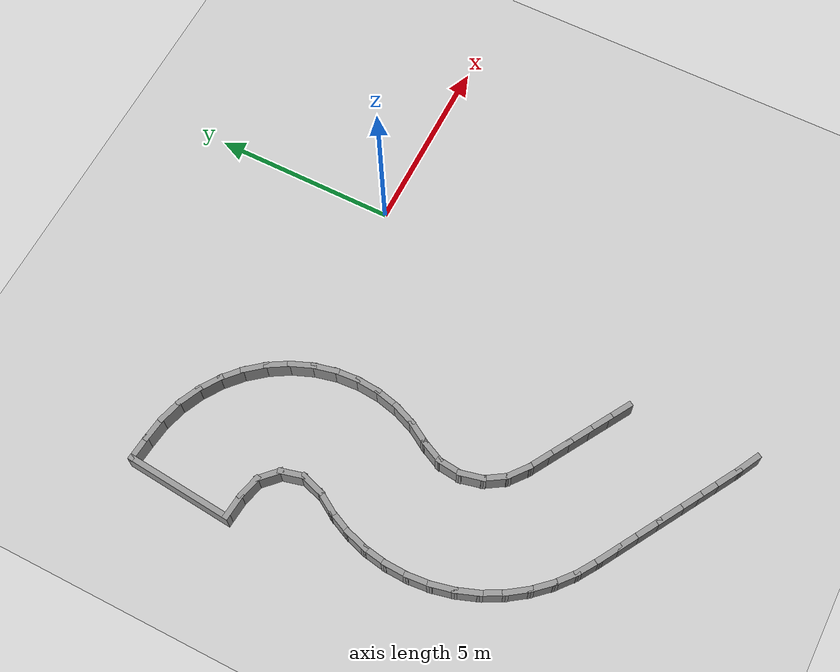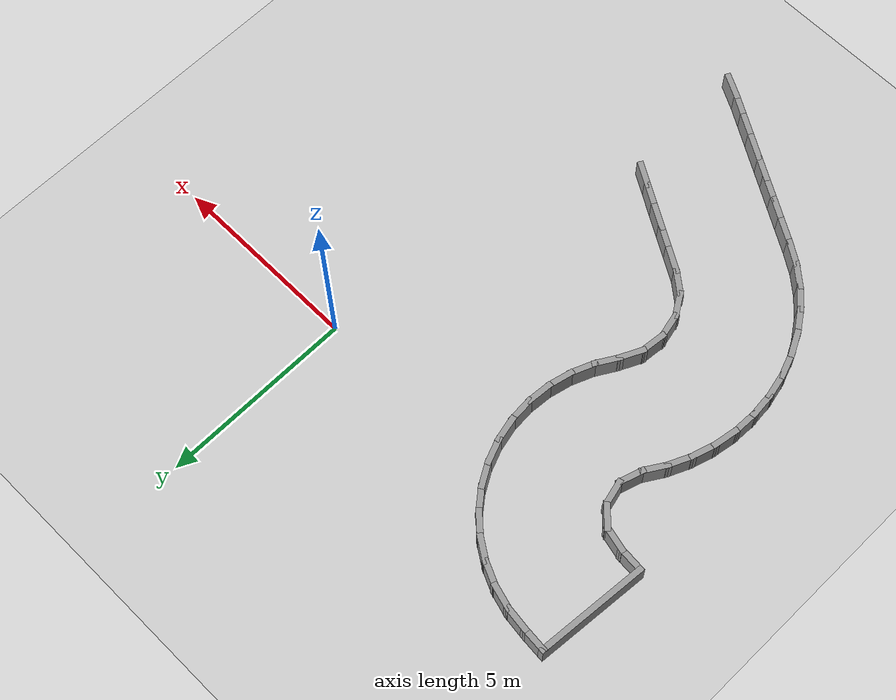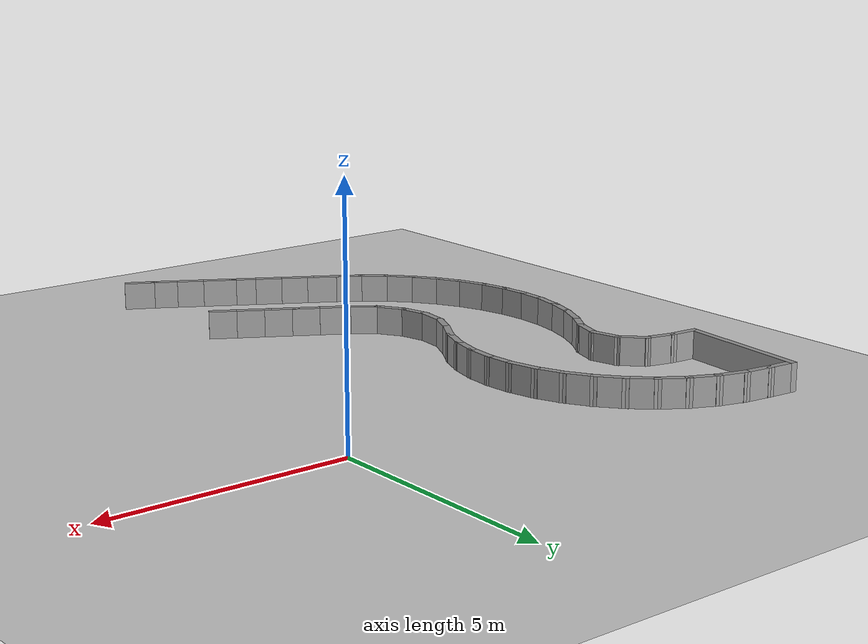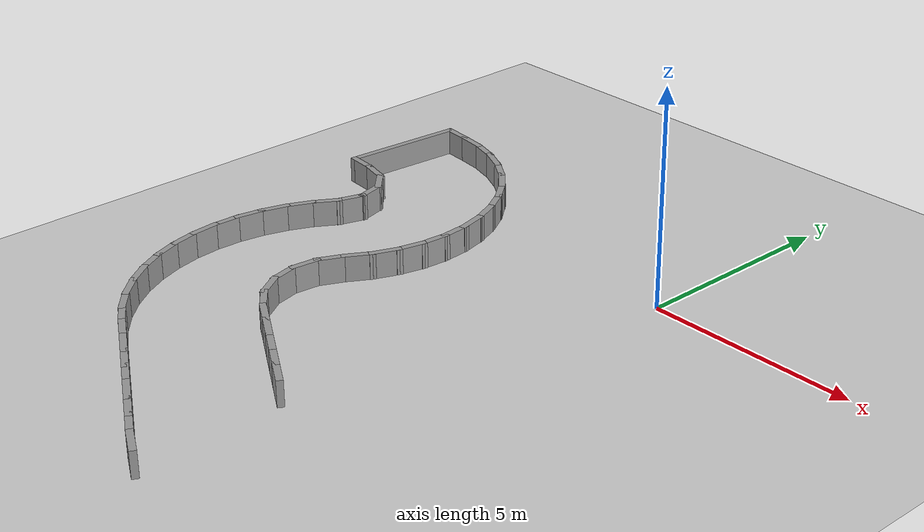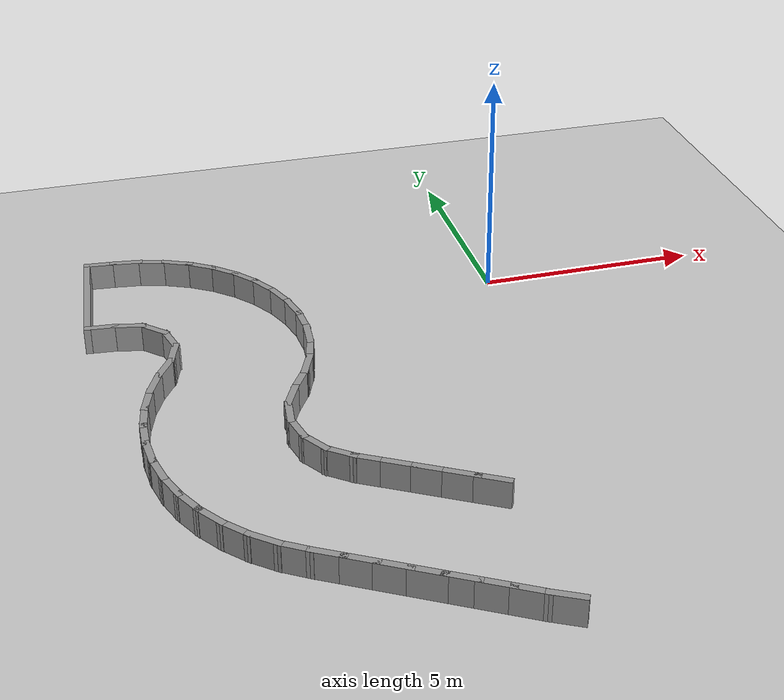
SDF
<sdf version="1.7">
 <world name="default">
  <model name="ground_plane">
   <static>1</static>
   <link name="link">
    <collision name="collision">
     <geometry><plane><normal>0 0 1</normal><size>100 100</size></plane></geometry>
     <surface><friction><ode><mu>100</mu><mu2>50</mu2></ode></friction></surface>
    </collision>
    <visual name="visual">
     <cast_shadows>0</cast_shadows>
     <geometry><plane><normal>0 0 1</normal><size>100 100</size></plane></geometry>
     <material>
      <script><uri>file://media/materials/scripts/gazebo.material</uri><name>Gazebo/Grey</name></script>
     </material>
    </visual>
   </link>
  </model>
  <model name="rand_turn_05">
   <link name="Wall_0">
    <collision name="Wall_0_Collision">
     <geometry><box><size>0.7500 0.1500 0.6000</size></box></geometry>
     <pose>0 0 0.3000 0 -0 0</pose>
    </collision>
    <visual name="Wall_0_Visual">
     <pose>0 0 0.3000 0 -0 0</pose>
     <geometry><box><size>0.7500 0.1500 0.6000</size></box></geometry>
     <material>
      <script><uri>file://media/materials/scripts/gazebo.material</uri><name>Gazebo/Grey</name></script>
      <ambient>1 1 1 1</ambient>
     </material>
    </visual>
    <pose>-8.7626 2.2049 0 0 -0 -0.08479</pose>
   </link>
   <link name="Wall_1">
    <collision name="Wall_1_Collision">
     <geometry><box><size>0.7495 0.1500 0.6000</size></box></geometry>
     <pose>0 0 0.3000 0 -0 0</pose>
    </collision>
    <visual name="Wall_1_Visual">
     <pose>0 0 0.3000 0 -0 0</pose>
     <geometry><box><size>0.7495 0.1500 0.6000</size></box></geometry>
     <material>
      <script><uri>file://media/materials/scripts/gazebo.material</uri><name>Gazebo/Grey</name></script>
      <ambient>1 1 1 1</ambient>
     </material>
    </visual>
    <pose>-8.1663 2.1412 0 0 -0 -0.12813</pose>
   </link>
   <link name="Wall_2">
    <collision name="Wall_2_Collision">
     <geometry><box><size>0.7494 0.1500 0.6000</size></box></geometry>
     <pose>0 0 0.3000 0 -0 0</pose>
    </collision>
    <visual name="Wall_2_Visual">
     <pose>0 0 0.3000 0 -0 0</pose>
     <geometry><box><size>0.7494 0.1500 0.6000</size></box></geometry>
     <material>
      <script><uri>file://media/materials/scripts/gazebo.material</uri><name>Gazebo/Grey</name></script>
      <ambient>1 1 1 1</ambient>
     </material>
    </visual>
    <pose>-7.5807 2.0215 0 0 -0 -0.27534</pose>
   </link>
   <link name="Wall_3">
    <collision name="Wall_3_Collision">
     <geometry><box><size>0.7494 0.1500 0.6000</size></box></geometry>
     <pose>0 0 0.3000 0 -0 0</pose>
    </collision>
    <visual name="Wall_3_Visual">
     <pose>0 0 0.3000 0 -0 0</pose>
     <geometry><box><size>0.7494 0.1500 0.6000</size></box></geometry>
     <material>
      <script><uri>file://media/materials/scripts/gazebo.material</uri><name>Gazebo/Grey</name></script>
      <ambient>1 1 1 1</ambient>
     </material>
    </visual>
    <pose>-7.0196 1.8156 0 0 -0 -0.42779</pose>
   </link>
   <link name="Wall_4">
    <collision name="Wall_4_Collision">
     <geometry><box><size>0.7494 0.1500 0.6000</size></box></geometry>
     <pose>0 0 0.3000 0 -0 0</pose>
    </collision>
    <visual name="Wall_4_Visual">
     <pose>0 0 0.3000 0 -0 0</pose>
     <geometry><box><size>0.7494 0.1500 0.6000</size></box></geometry>
     <material>
      <script><uri>file://media/materials/scripts/gazebo.material</uri><name>Gazebo/Grey</name></script>
      <ambient>1 1 1 1</ambient>
     </material>
    </visual>
    <pose>-6.4964 1.5267 0 0 -0 -0.58156</pose>
   </link>
   <link name="Wall_5">
    <collision name="Wall_5_Collision">
     <geometry><box><size>0.7494 0.1500 0.6000</size></box></geometry>
     <pose>0 0 0.3000 0 -0 0</pose>
    </collision>
    <visual name="Wall_5_Visual">
     <pose>0 0 0.3000 0 -0 0</pose>
     <geometry><box><size>0.7494 0.1500 0.6000</size></box></geometry>
     <material>
      <script><uri>file://media/materials/scripts/gazebo.material</uri><name>Gazebo/Grey</name></script>
      <ambient>1 1 1 1</ambient>
     </material>
    </visual>
    <pose>-6.0235 1.1612 0 0 -0 -0.73442</pose>
   </link>
   <link name="Wall_6">
    <collision name="Wall_6_Collision">
     <geometry><box><size>0.7493 0.1500 0.6000</size></box></geometry>
     <pose>0 0 0.3000 0 -0 0</pose>
    </collision>
    <visual name="Wall_6_Visual">
     <pose>0 0 0.3000 0 -0 0</pose>
     <geometry><box><size>0.7493 0.1500 0.6000</size></box></geometry>
     <material>
      <script><uri>file://media/materials/scripts/gazebo.material</uri><name>Gazebo/Grey</name></script>
      <ambient>1 1 1 1</ambient>
     </material>
    </visual>
    <pose>-5.6118 0.7281 0 0 -0 -0.88686</pose>
   </link>
   <link name="Wall_7">
    <collision name="Wall_7_Collision">
     <geometry><box><size>0.7493 0.1500 0.6000</size></box></geometry>
     <pose>0 0 0.3000 0 -0 0</pose>
    </collision>
    <visual name="Wall_7_Visual">
     <pose>0 0 0.3000 0 -0 0</pose>
     <geometry><box><size>0.7493 0.1500 0.6000</size></box></geometry>
     <material>
      <script><uri>file://media/materials/scripts/gazebo.material</uri><name>Gazebo/Grey</name></script>
      <ambient>1 1 1 1</ambient>
     </material>
    </visual>
    <pose>-5.2705 0.2375 0 0 -0 -1.03931</pose>
   </link>
   <link name="Wall_8">
    <collision name="Wall_8_Collision">
     <geometry><box><size>0.7494 0.1500 0.6000</size></box></geometry>
     <pose>0 0 0.3000 0 -0 0</pose>
    </collision>
    <visual name="Wall_8_Visual">
     <pose>0 0 0.3000 0 -0 0</pose>
     <geometry><box><size>0.7494 0.1500 0.6000</size></box></geometry>
     <material>
      <script><uri>file://media/materials/scripts/gazebo.material</uri><name>Gazebo/Grey</name></script>
      <ambient>1 1 1 1</ambient>
     </material>
    </visual>
    <pose>-5.0078 -0.2993 0 0 -0 -1.19175</pose>
   </link>
   <link name="Wall_9">
    <collision name="Wall_9_Collision">
     <geometry><box><size>0.7494 0.1500 0.6000</size></box></geometry>
     <pose>0 0 0.3000 0 -0 0</pose>
    </collision>
    <visual name="Wall_9_Visual">
     <pose>0 0 0.3000 0 -0 0</pose>
     <geometry><box><size>0.7494 0.1500 0.6000</size></box></geometry>
     <material>
      <script><uri>file://media/materials/scripts/gazebo.material</uri><name>Gazebo/Grey</name></script>
      <ambient>1 1 1 1</ambient>
     </material>
    </visual>
    <pose>-4.8295 -0.8697 0 0 -0 -1.34420</pose>
   </link>
   <link name="Wall_10">
    <collision name="Wall_10_Collision">
     <geometry><box><size>0.7494 0.1500 0.6000</size></box></geometry>
     <pose>0 0 0.3000 0 -0 0</pose>
    </collision>
    <visual name="Wall_10_Visual">
     <pose>0 0 0.3000 0 -0 0</pose>
     <geometry><box><size>0.7494 0.1500 0.6000</size></box></geometry>
     <material>
      <script><uri>file://media/materials/scripts/gazebo.material</uri><name>Gazebo/Grey</name></script>
      <ambient>1 1 1 1</ambient>
     </material>
    </visual>
    <pose>-4.7404 -1.4607 0 0 -0 -1.49800</pose>
   </link>
   <link name="Wall_11">
    <collision name="Wall_11_Collision">
     <geometry><box><size>0.7494 0.1500 0.6000</size></box></geometry>
     <pose>0 0 0.3000 0 -0 0</pose>
    </collision>
    <visual name="Wall_11_Visual">
     <pose>0 0 0.3000 0 -0 0</pose>
     <geometry><box><size>0.7494 0.1500 0.6000</size></box></geometry>
     <material>
      <script><uri>file://media/materials/scripts/gazebo.material</uri><name>Gazebo/Grey</name></script>
      <ambient>1 1 1 1</ambient>
     </material>
    </visual>
    <pose>-4.7426 -2.0583 0 0 -0 -1.65083</pose>
   </link>
   <link name="Wall_12">
    <collision name="Wall_12_Collision">
     <geometry><box><size>0.7493 0.1500 0.6000</size></box></geometry>
     <pose>0 0 0.3000 0 -0 0</pose>
    </collision>
    <visual name="Wall_12_Visual">
     <pose>0 0 0.3000 0 -0 0</pose>
     <geometry><box><size>0.7493 0.1500 0.6000</size></box></geometry>
     <material>
      <script><uri>file://media/materials/scripts/gazebo.material</uri><name>Gazebo/Grey</name></script>
      <ambient>1 1 1 1</ambient>
     </material>
    </visual>
    <pose>-4.8356 -2.6487 0 0 -0 -1.80327</pose>
   </link>
   <link name="Wall_13">
    <collision name="Wall_13_Collision">
     <geometry><box><size>0.7493 0.1500 0.6000</size></box></geometry>
     <pose>0 0 0.3000 0 -0 0</pose>
    </collision>
    <visual name="Wall_13_Visual">
     <pose>0 0 0.3000 0 -0 0</pose>
     <geometry><box><size>0.7493 0.1500 0.6000</size></box></geometry>
     <material>
      <script><uri>file://media/materials/scripts/gazebo.material</uri><name>Gazebo/Grey</name></script>
      <ambient>1 1 1 1</ambient>
     </material>
    </visual>
    <pose>-5.0171 -3.2180 0 0 -0 -1.95572</pose>
   </link>
   <link name="Wall_14">
    <collision name="Wall_14_Collision">
     <geometry><box><size>0.7494 0.1500 0.6000</size></box></geometry>
     <pose>0 0 0.3000 0 -0 0</pose>
    </collision>
    <visual name="Wall_14_Visual">
     <pose>0 0 0.3000 0 -0 0</pose>
     <geometry><box><size>0.7494 0.1500 0.6000</size></box></geometry>
     <material>
      <script><uri>file://media/materials/scripts/gazebo.material</uri><name>Gazebo/Grey</name></script>
      <ambient>1 1 1 1</ambient>
     </material>
    </visual>
    <pose>-5.2828 -3.7534 0 0 -0 -2.10714</pose>
   </link>
   <link name="Wall_15">
    <collision name="Wall_15_Collision">
     <geometry><box><size>0.7472 0.1500 0.6000</size></box></geometry>
     <pose>0 0 0.3000 0 -0 0</pose>
    </collision>
    <visual name="Wall_15_Visual">
     <pose>0 0 0.3000 0 -0 0</pose>
     <geometry><box><size>0.7472 0.1500 0.6000</size></box></geometry>
     <material>
      <script><uri>file://media/materials/scripts/gazebo.material</uri><name>Gazebo/Grey</name></script>
      <ambient>1 1 1 1</ambient>
     </material>
    </visual>
    <pose>-5.5640 -4.2807 0 0 -0 -2.01420</pose>
   </link>
   <link name="Wall_16">
    <collision name="Wall_16_Collision">
     <geometry><box><size>0.7472 0.1500 0.6000</size></box></geometry>
     <pose>0 0 0.3000 0 -0 0</pose>
    </collision>
    <visual name="Wall_16_Visual">
     <pose>0 0 0.3000 0 -0 0</pose>
     <geometry><box><size>0.7472 0.1500 0.6000</size></box></geometry>
     <material>
      <script><uri>file://media/materials/scripts/gazebo.material</uri><name>Gazebo/Grey</name></script>
      <ambient>1 1 1 1</ambient>
     </material>
    </visual>
    <pose>-5.7241 -4.8473 0 0 -0 -1.67809</pose>
   </link>
   <link name="Wall_17">
    <collision name="Wall_17_Collision">
     <geometry><box><size>0.7472 0.1500 0.6000</size></box></geometry>
     <pose>0 0 0.3000 0 -0 0</pose>
    </collision>
    <visual name="Wall_17_Visual">
     <pose>0 0 0.3000 0 -0 0</pose>
     <geometry><box><size>0.7472 0.1500 0.6000</size></box></geometry>
     <material>
      <script><uri>file://media/materials/scripts/gazebo.material</uri><name>Gazebo/Grey</name></script>
      <ambient>1 1 1 1</ambient>
     </material>
    </visual>
    <pose>-5.6886 -5.4350 0 0 -0 -1.34269</pose>
   </link>
   <link name="Wall_18">
    <collision name="Wall_18_Collision">
     <geometry><box><size>0.7471 0.1500 0.6000</size></box></geometry>
     <pose>0 0 0.3000 0 -0 0</pose>
    </collision>
    <visual name="Wall_18_Visual">
     <pose>0 0 0.3000 0 -0 0</pose>
     <geometry><box><size>0.7471 0.1500 0.6000</size></box></geometry>
     <material>
      <script><uri>file://media/materials/scripts/gazebo.material</uri><name>Gazebo/Grey</name></script>
      <ambient>1 1 1 1</ambient>
     </material>
    </visual>
    <pose>-5.4616 -5.9783 0 0 -0 -1.00732</pose>
   </link>
   <link name="Wall_19">
    <collision name="Wall_19_Collision">
     <geometry><box><size>0.7473 0.1500 0.6000</size></box></geometry>
     <pose>0 0 0.3000 0 -0 0</pose>
    </collision>
    <visual name="Wall_19_Visual">
     <pose>0 0 0.3000 0 -0 0</pose>
     <geometry><box><size>0.7473 0.1500 0.6000</size></box></geometry>
     <material>
      <script><uri>file://media/materials/scripts/gazebo.material</uri><name>Gazebo/Grey</name></script>
      <ambient>1 1 1 1</ambient>
     </material>
    </visual>
    <pose>-5.0686 -6.4169 0 0 -0 -0.67321</pose>
   </link>
   <link name="Wall_20">
    <collision name="Wall_20_Collision">
     <geometry><box><size>0.7500 0.1500 0.6000</size></box></geometry>
     <pose>0 0 0.3000 0 -0 0</pose>
    </collision>
    <visual name="Wall_20_Visual">
     <pose>0 0 0.3000 0 -0 0</pose>
     <geometry><box><size>0.7500 0.1500 0.6000</size></box></geometry>
     <material>
      <script><uri>file://media/materials/scripts/gazebo.material</uri><name>Gazebo/Grey</name></script>
      <ambient>1 1 1 1</ambient>
     </material>
    </visual>
    <pose>-4.5766 -6.7553 0 0 -0 -0.53219</pose>
   </link>
   <link name="Wall_21">
    <collision name="Wall_21_Collision">
     <geometry><box><size>0.7500 0.1500 0.6000</size></box></geometry>
     <pose>0 0 0.3000 0 -0 0</pose>
    </collision>
    <visual name="Wall_21_Visual">
     <pose>0 0 0.3000 0 -0 0</pose>
     <geometry><box><size>0.7500 0.1500 0.6000</size></box></geometry>
     <material>
      <script><uri>file://media/materials/scripts/gazebo.material</uri><name>Gazebo/Grey</name></script>
      <ambient>1 1 1 1</ambient>
     </material>
    </visual>
    <pose>-4.0596 -7.0598 0 0 -0 -0.53224</pose>
   </link>
   <link name="Wall_22">
    <collision name="Wall_22_Collision">
     <geometry><box><size>0.7500 0.1500 0.6000</size></box></geometry>
     <pose>0 0 0.3000 0 -0 0</pose>
    </collision>
    <visual name="Wall_22_Visual">
     <pose>0 0 0.3000 0 -0 0</pose>
     <geometry><box><size>0.7500 0.1500 0.6000</size></box></geometry>
     <material>
      <script><uri>file://media/materials/scripts/gazebo.material</uri><name>Gazebo/Grey</name></script>
      <ambient>1 1 1 1</ambient>
     </material>
    </visual>
    <pose>-3.5426 -7.3643 0 0 -0 -0.53224</pose>
   </link>
   <link name="Wall_23">
    <collision name="Wall_23_Collision">
     <geometry><box><size>0.7500 0.1500 0.6000</size></box></geometry>
     <pose>0 0 0.3000 0 -0 0</pose>
    </collision>
    <visual name="Wall_23_Visual">
     <pose>0 0 0.3000 0 -0 0</pose>
     <geometry><box><size>0.7500 0.1500 0.6000</size></box></geometry>
     <material>
      <script><uri>file://media/materials/scripts/gazebo.material</uri><name>Gazebo/Grey</name></script>
      <ambient>1 1 1 1</ambient>
     </material>
    </visual>
    <pose>-3.0256 -7.6688 0 0 -0 -0.53224</pose>
   </link>
   <link name="Wall_24">
    <collision name="Wall_24_Collision">
     <geometry><box><size>0.7500 0.1500 0.6000</size></box></geometry>
     <pose>0 0 0.3000 0 -0 0</pose>
    </collision>
    <visual name="Wall_24_Visual">
     <pose>0 0 0.3000 0 -0 0</pose>
     <geometry><box><size>0.7500 0.1500 0.6000</size></box></geometry>
     <material>
      <script><uri>file://media/materials/scripts/gazebo.material</uri><name>Gazebo/Grey</name></script>
      <ambient>1 1 1 1</ambient>
     </material>
    </visual>
    <pose>-2.5086 -7.9733 0 0 -0 -0.53224</pose>
   </link>
   <link name="Wall_49">
    <collision name="Wall_49_Collision">
     <geometry><box><size>0.7500 0.1500 0.6000</size></box></geometry>
     <pose>0 0 0.3000 0 -0 0</pose>
    </collision>
    <visual name="Wall_49_Visual">
     <pose>0 0 0.3000 0 -0 0</pose>
     <geometry><box><size>0.7500 0.1500 0.6000</size></box></geometry>
     <material>
      <script><uri>file://media/materials/scripts/gazebo.material</uri><name>Gazebo/Grey</name></script>
      <ambient>1 1 1 1</ambient>
     </material>
    </visual>
    <pose>-9.0029 -0.6232 0 0 -0 -0.08479</pose>
   </link>
   <link name="Wall_50">
    <collision name="Wall_50_Collision">
     <geometry><box><size>0.7444 0.1500 0.6000</size></box></geometry>
     <pose>0 0 0.3000 0 -0 0</pose>
    </collision>
    <visual name="Wall_50_Visual">
     <pose>0 0 0.3000 0 -0 0</pose>
     <geometry><box><size>0.7444 0.1500 0.6000</size></box></geometry>
     <material>
      <script><uri>file://media/materials/scripts/gazebo.material</uri><name>Gazebo/Grey</name></script>
      <ambient>1 1 1 1</ambient>
     </material>
    </visual>
    <pose>-8.4153 -0.7189 0 0 -0 -0.23879</pose>
   </link>
   <link name="Wall_51">
    <collision name="Wall_51_Collision">
     <geometry><box><size>0.7424 0.1500 0.6000</size></box></geometry>
     <pose>0 0 0.3000 0 -0 0</pose>
    </collision>
    <visual name="Wall_51_Visual">
     <pose>0 0 0.3000 0 -0 0</pose>
     <geometry><box><size>0.7424 0.1500 0.6000</size></box></geometry>
     <material>
      <script><uri>file://media/materials/scripts/gazebo.material</uri><name>Gazebo/Grey</name></script>
      <ambient>1 1 1 1</ambient>
     </material>
    </visual>
    <pose>-7.9145 -0.9960 0 0 -0 -0.77289</pose>
   </link>
   <link name="Wall_52">
    <collision name="Wall_52_Collision">
     <geometry><box><size>0.7424 0.1500 0.6000</size></box></geometry>
     <pose>0 0 0.3000 0 -0 0</pose>
    </collision>
    <visual name="Wall_52_Visual">
     <pose>0 0 0.3000 0 -0 0</pose>
     <geometry><box><size>0.7424 0.1500 0.6000</size></box></geometry>
     <material>
      <script><uri>file://media/materials/scripts/gazebo.material</uri><name>Gazebo/Grey</name></script>
      <ambient>1 1 1 1</ambient>
     </material>
    </visual>
    <pose>-7.6298 -1.4900 0 0 -0 -1.32316</pose>
   </link>
   <link name="Wall_53">
    <collision name="Wall_53_Collision">
     <geometry><box><size>0.7424 0.1500 0.6000</size></box></geometry>
     <pose>0 0 0.3000 0 -0 0</pose>
    </collision>
    <visual name="Wall_53_Visual">
     <pose>0 0 0.3000 0 -0 0</pose>
     <geometry><box><size>0.7424 0.1500 0.6000</size></box></geometry>
     <material>
      <script><uri>file://media/materials/scripts/gazebo.material</uri><name>Gazebo/Grey</name></script>
      <ambient>1 1 1 1</ambient>
     </material>
    </visual>
    <pose>-7.6455 -2.0599 0 0 -0 -1.87351</pose>
   </link>
   <link name="Wall_54">
    <collision name="Wall_54_Collision">
     <geometry><box><size>0.7496 0.1500 0.6000</size></box></geometry>
     <pose>0 0 0.3000 0 -0 0</pose>
    </collision>
    <visual name="Wall_54_Visual">
     <pose>0 0 0.3000 0 -0 0</pose>
     <geometry><box><size>0.7496 0.1500 0.6000</size></box></geometry>
     <material>
      <script><uri>file://media/materials/scripts/gazebo.material</uri><name>Gazebo/Grey</name></script>
      <ambient>1 1 1 1</ambient>
     </material>
    </visual>
    <pose>-7.8917 -2.5975 0 0 -0 -2.12550</pose>
   </link>
   <link name="Wall_55">
    <collision name="Wall_55_Collision">
     <geometry><box><size>0.7496 0.1500 0.6000</size></box></geometry>
     <pose>0 0 0.3000 0 -0 0</pose>
    </collision>
    <visual name="Wall_55_Visual">
     <pose>0 0 0.3000 0 -0 0</pose>
     <geometry><box><size>0.7496 0.1500 0.6000</size></box></geometry>
     <material>
      <script><uri>file://media/materials/scripts/gazebo.material</uri><name>Gazebo/Grey</name></script>
      <ambient>1 1 1 1</ambient>
     </material>
    </visual>
    <pose>-8.1736 -3.1253 0 0 -0 -1.99722</pose>
   </link>
   <link name="Wall_56">
    <collision name="Wall_56_Collision">
     <geometry><box><size>0.7495 0.1500 0.6000</size></box></geometry>
     <pose>0 0 0.3000 0 -0 0</pose>
    </collision>
    <visual name="Wall_56_Visual">
     <pose>0 0 0.3000 0 -0 0</pose>
     <geometry><box><size>0.7495 0.1500 0.6000</size></box></geometry>
     <material>
      <script><uri>file://media/materials/scripts/gazebo.material</uri><name>Gazebo/Grey</name></script>
      <ambient>1 1 1 1</ambient>
     </material>
    </visual>
    <pose>-8.3853 -3.6849 0 0 -0 -1.86772</pose>
   </link>
   <link name="Wall_57">
    <collision name="Wall_57_Collision">
     <geometry><box><size>0.7495 0.1500 0.6000</size></box></geometry>
     <pose>0 0 0.3000 0 -0 0</pose>
    </collision>
    <visual name="Wall_57_Visual">
     <pose>0 0 0.3000 0 -0 0</pose>
     <geometry><box><size>0.7495 0.1500 0.6000</size></box></geometry>
     <material>
      <script><uri>file://media/materials/scripts/gazebo.material</uri><name>Gazebo/Grey</name></script>
      <ambient>1 1 1 1</ambient>
     </material>
    </visual>
    <pose>-8.5230 -4.2671 0 0 -0 -1.73822</pose>
   </link>
   <link name="Wall_58">
    <collision name="Wall_58_Collision">
     <geometry><box><size>0.7495 0.1500 0.6000</size></box></geometry>
     <pose>0 0 0.3000 0 -0 0</pose>
    </collision>
    <visual name="Wall_58_Visual">
     <pose>0 0 0.3000 0 -0 0</pose>
     <geometry><box><size>0.7495 0.1500 0.6000</size></box></geometry>
     <material>
      <script><uri>file://media/materials/scripts/gazebo.material</uri><name>Gazebo/Grey</name></script>
      <ambient>1 1 1 1</ambient>
     </material>
    </visual>
    <pose>-8.5843 -4.8622 0 0 -0 -1.60873</pose>
   </link>
   <link name="Wall_59">
    <collision name="Wall_59_Collision">
     <geometry><box><size>0.7496 0.1500 0.6000</size></box></geometry>
     <pose>0 0 0.3000 0 -0 0</pose>
    </collision>
    <visual name="Wall_59_Visual">
     <pose>0 0 0.3000 0 -0 0</pose>
     <geometry><box><size>0.7496 0.1500 0.6000</size></box></geometry>
     <material>
      <script><uri>file://media/materials/scripts/gazebo.material</uri><name>Gazebo/Grey</name></script>
      <ambient>1 1 1 1</ambient>
     </material>
    </visual>
    <pose>-8.5683 -5.4603 0 0 -0 -1.47923</pose>
   </link>
   <link name="Wall_60">
    <collision name="Wall_60_Collision">
     <geometry><box><size>0.7496 0.1500 0.6000</size></box></geometry>
     <pose>0 0 0.3000 0 -0 0</pose>
    </collision>
    <visual name="Wall_60_Visual">
     <pose>0 0 0.3000 0 -0 0</pose>
     <geometry><box><size>0.7496 0.1500 0.6000</size></box></geometry>
     <material>
      <script><uri>file://media/materials/scripts/gazebo.material</uri><name>Gazebo/Grey</name></script>
      <ambient>1 1 1 1</ambient>
     </material>
    </visual>
    <pose>-8.4751 -6.0513 0 0 -0 -1.34953</pose>
   </link>
   <link name="Wall_61">
    <collision name="Wall_61_Collision">
     <geometry><box><size>0.7496 0.1500 0.6000</size></box></geometry>
     <pose>0 0 0.3000 0 -0 0</pose>
    </collision>
    <visual name="Wall_61_Visual">
     <pose>0 0 0.3000 0 -0 0</pose>
     <geometry><box><size>0.7496 0.1500 0.6000</size></box></geometry>
     <material>
      <script><uri>file://media/materials/scripts/gazebo.material</uri><name>Gazebo/Grey</name></script>
      <ambient>1 1 1 1</ambient>
     </material>
    </visual>
    <pose>-8.3060 -6.6252 0 0 -0 -1.21904</pose>
   </link>
   <link name="Wall_62">
    <collision name="Wall_62_Collision">
     <geometry><box><size>0.7495 0.1500 0.6000</size></box></geometry>
     <pose>0 0 0.3000 0 -0 0</pose>
    </collision>
    <visual name="Wall_62_Visual">
     <pose>0 0 0.3000 0 -0 0</pose>
     <geometry><box><size>0.7495 0.1500 0.6000</size></box></geometry>
     <material>
      <script><uri>file://media/materials/scripts/gazebo.material</uri><name>Gazebo/Grey</name></script>
      <ambient>1 1 1 1</ambient>
     </material>
    </visual>
    <pose>-8.0639 -7.1724 0 0 -0 -1.08954</pose>
   </link>
   <link name="Wall_63">
    <collision name="Wall_63_Collision">
     <geometry><box><size>0.7495 0.1500 0.6000</size></box></geometry>
     <pose>0 0 0.3000 0 -0 0</pose>
    </collision>
    <visual name="Wall_63_Visual">
     <pose>0 0 0.3000 0 -0 0</pose>
     <geometry><box><size>0.7495 0.1500 0.6000</size></box></geometry>
     <material>
      <script><uri>file://media/materials/scripts/gazebo.material</uri><name>Gazebo/Grey</name></script>
      <ambient>1 1 1 1</ambient>
     </material>
    </visual>
    <pose>-7.7533 -7.6837 0 0 -0 -0.96004</pose>
   </link>
   <link name="Wall_64">
    <collision name="Wall_64_Collision">
     <geometry><box><size>0.7495 0.1500 0.6000</size></box></geometry>
     <pose>0 0 0.3000 0 -0 0</pose>
    </collision>
    <visual name="Wall_64_Visual">
     <pose>0 0 0.3000 0 -0 0</pose>
     <geometry><box><size>0.7495 0.1500 0.6000</size></box></geometry>
     <material>
      <script><uri>file://media/materials/scripts/gazebo.material</uri><name>Gazebo/Grey</name></script>
      <ambient>1 1 1 1</ambient>
     </material>
    </visual>
    <pose>-7.3792 -8.1506 0 0 -0 -0.83054</pose>
   </link>
   <link name="Wall_65">
    <collision name="Wall_65_Collision">
     <geometry><box><size>0.7496 0.1500 0.6000</size></box></geometry>
     <pose>0 0 0.3000 0 -0 0</pose>
    </collision>
    <visual name="Wall_65_Visual">
     <pose>0 0 0.3000 0 -0 0</pose>
     <geometry><box><size>0.7496 0.1500 0.6000</size></box></geometry>
     <material>
      <script><uri>file://media/materials/scripts/gazebo.material</uri><name>Gazebo/Grey</name></script>
      <ambient>1 1 1 1</ambient>
     </material>
    </visual>
    <pose>-6.9479 -8.5652 0 0 -0 -0.70105</pose>
   </link>
   <link name="Wall_66">
    <collision name="Wall_66_Collision">
     <geometry><box><size>0.7497 0.1500 0.6000</size></box></geometry>
     <pose>0 0 0.3000 0 -0 0</pose>
    </collision>
    <visual name="Wall_66_Visual">
     <pose>0 0 0.3000 0 -0 0</pose>
     <geometry><box><size>0.7497 0.1500 0.6000</size></box></geometry>
     <material>
      <script><uri>file://media/materials/scripts/gazebo.material</uri><name>Gazebo/Grey</name></script>
      <ambient>1 1 1 1</ambient>
     </material>
    </visual>
    <pose>-6.4671 -8.9214 0 0 -0 -0.57415</pose>
   </link>
   <link name="Wall_67">
    <collision name="Wall_67_Collision">
     <geometry><box><size>0.7500 0.1500 0.6000</size></box></geometry>
     <pose>0 0 0.3000 0 -0 0</pose>
    </collision>
    <visual name="Wall_67_Visual">
     <pose>0 0 0.3000 0 -0 0</pose>
     <geometry><box><size>0.7500 0.1500 0.6000</size></box></geometry>
     <material>
      <script><uri>file://media/materials/scripts/gazebo.material</uri><name>Gazebo/Grey</name></script>
      <ambient>1 1 1 1</ambient>
     </material>
    </visual>
    <pose>-5.9568 -9.2365 0 0 -0 -0.53224</pose>
   </link>
   <link name="Wall_68">
    <collision name="Wall_68_Collision">
     <geometry><box><size>0.7500 0.1500 0.6000</size></box></geometry>
     <pose>0 0 0.3000 0 -0 0</pose>
    </collision>
    <visual name="Wall_68_Visual">
     <pose>0 0 0.3000 0 -0 0</pose>
     <geometry><box><size>0.7500 0.1500 0.6000</size></box></geometry>
     <material>
      <script><uri>file://media/materials/scripts/gazebo.material</uri><name>Gazebo/Grey</name></script>
      <ambient>1 1 1 1</ambient>
     </material>
    </visual>
    <pose>-5.4398 -9.5410 0 0 -0 -0.53224</pose>
   </link>
   <link name="Wall_69">
    <collision name="Wall_69_Collision">
     <geometry><box><size>0.7500 0.1500 0.6000</size></box></geometry>
     <pose>0 0 0.3000 0 -0 0</pose>
    </collision>
    <visual name="Wall_69_Visual">
     <pose>0 0 0.3000 0 -0 0</pose>
     <geometry><box><size>0.7500 0.1500 0.6000</size></box></geometry>
     <material>
      <script><uri>file://media/materials/scripts/gazebo.material</uri><name>Gazebo/Grey</name></script>
      <ambient>1 1 1 1</ambient>
     </material>
    </visual>
    <pose>-4.9228 -9.8455 0 0 -0 -0.53224</pose>
   </link>
   <link name="Wall_70">
    <collision name="Wall_70_Collision">
     <geometry><box><size>0.7500 0.1500 0.6000</size></box></geometry>
     <pose>0 0 0.3000 0 -0 0</pose>
    </collision>
    <visual name="Wall_70_Visual">
     <pose>0 0 0.3000 0 -0 0</pose>
     <geometry><box><size>0.7500 0.1500 0.6000</size></box></geometry>
     <material>
      <script><uri>file://media/materials/scripts/gazebo.material</uri><name>Gazebo/Grey</name></script>
      <ambient>1 1 1 1</ambient>
     </material>
    </visual>
    <pose>-4.4058 -10.1500 0 0 -0 -0.53224</pose>
   </link>
   <link name="Wall_71">
    <collision name="Wall_71_Collision">
     <geometry><box><size>0.7500 0.1500 0.6000</size></box></geometry>
     <pose>0 0 0.3000 0 -0 0</pose>
    </collision>
    <visual name="Wall_71_Visual">
     <pose>0 0 0.3000 0 -0 0</pose>
     <geometry><box><size>0.7500 0.1500 0.6000</size></box></geometry>
     <material>
      <script><uri>file://media/materials/scripts/gazebo.material</uri><name>Gazebo/Grey</name></script>
      <ambient>1 1 1 1</ambient>
     </material>
    </visual>
    <pose>-3.8888 -10.4544 0 0 -0 -0.53224</pose>
   </link>
   <link name="Wall_72">
    <collision name="Wall_72_Collision">
     <geometry><box><size>0.7500 0.1500 0.6000</size></box></geometry>
     <pose>0 0 0.3000 0 -0 0</pose>
    </collision>
    <visual name="Wall_72_Visual">
     <pose>0 0 0.3000 0 -0 0</pose>
     <geometry><box><size>0.7500 0.1500 0.6000</size></box></geometry>
     <material>
      <script><uri>file://media/materials/scripts/gazebo.material</uri><name>Gazebo/Grey</name></script>
      <ambient>1 1 1 1</ambient>
     </material>
    </visual>
    <pose>-3.3718 -10.7589 0 0 -0 -0.53224</pose>
   </link>
   <link name="Wall_73">
    <collision name="Wall_73_Collision">
     <geometry><box><size>0.7500 0.1500 0.6000</size></box></geometry>
     <pose>0 0 0.3000 0 -0 0</pose>
    </collision>
    <visual name="Wall_73_Visual">
     <pose>0 0 0.3000 0 -0 0</pose>
     <geometry><box><size>0.7500 0.1500 0.6000</size></box></geometry>
     <material>
      <script><uri>file://media/materials/scripts/gazebo.material</uri><name>Gazebo/Grey</name></script>
      <ambient>1 1 1 1</ambient>
     </material>
    </visual>
    <pose>-2.8548 -11.0634 0 0 -0 -0.53224</pose>
   </link>
   <link name="Wall_74">
    <collision name="Wall_74_Collision">
     <geometry><box><size>0.7495 0.1500 0.6000</size></box></geometry>
     <pose>0 0 0.3000 0 -0 0</pose>
    </collision>
    <visual name="Wall_74_Visual">
     <pose>0 0 0.3000 0 -0 0</pose>
     <geometry><box><size>0.7495 0.1500 0.6000</size></box></geometry>
     <material>
      <script><uri>file://media/materials/scripts/gazebo.material</uri><name>Gazebo/Grey</name></script>
      <ambient>1 1 1 1</ambient>
     </material>
    </visual>
    <pose>-2.3313 -11.3557 0 0 -0 -0.48635</pose>
   </link>
   <link name="Wall_103">
    <collision name="Wall_103_Collision">
     <geometry><box><size>2.9884 0.1500 0.6000</size></box></geometry>
     <pose>0 0 0.3000 0 -0 0</pose>
    </collision>
    <visual name="Wall_103_Visual">
     <pose>0 0 0.3000 0 -0 0</pose>
     <geometry><box><size>2.9884 0.1500 0.6000</size></box></geometry>
     <material>
      <script><uri>file://media/materials/scripts/gazebo.material</uri><name>Gazebo/Grey</name></script>
      <ambient>1 1 1 1</ambient>
     </material>
    </visual>
    <pose>-9.1817 0.8163 0 0 -0 1.48601</pose>
   </link>
   <static>1</static>
  </model>
 </world>
</sdf>
